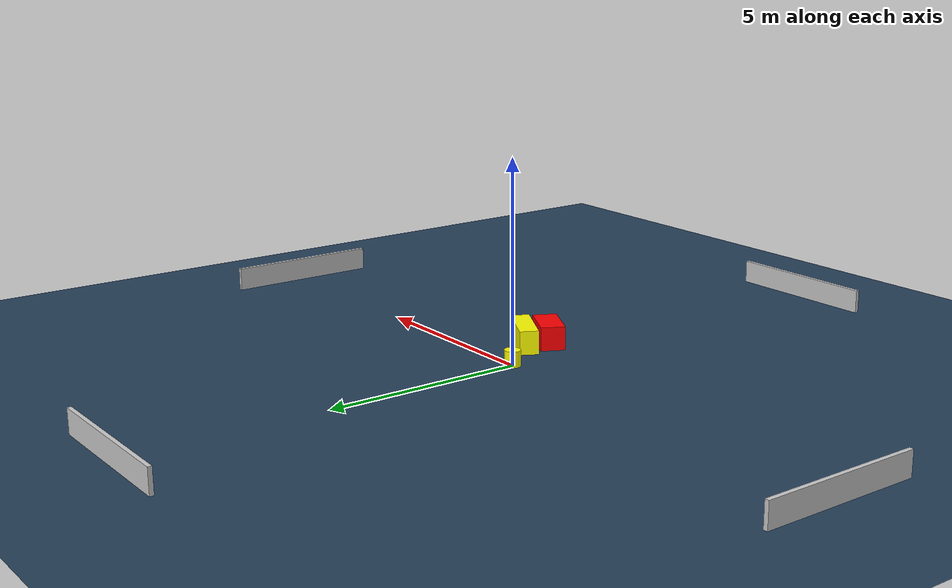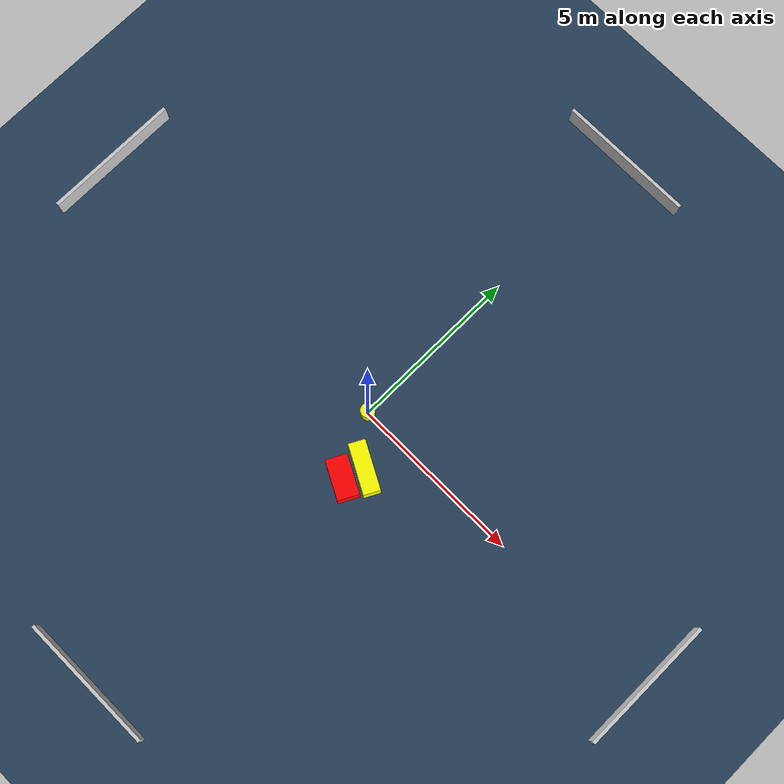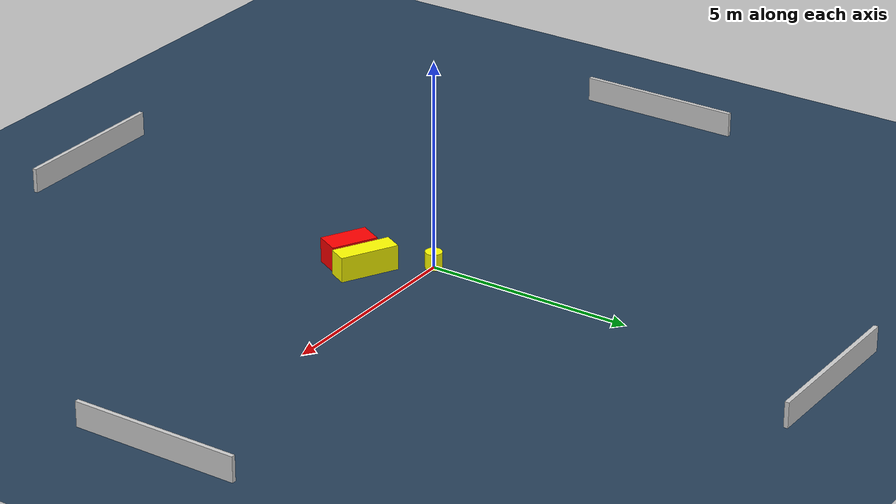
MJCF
<?xml version="1.0" ?>
<mujoco model="generated_environment">
  <option timestep="0.01" integrator="RK4" cone="elliptic"/>
  <default>
    <geom density="1"/>
  </default>
  <asset>
    <texture builtin="gradient" height="3072" name="skybox" rgb1="0.3 0.5 0.7" rgb2="0 0 0" type="skybox" width="512"/>
    <texture builtin="checker" height="300" name="groundplane" rgb1="0.2 0.3 0.4" rgb2="0.1 0.2 0.3" type="2d" width="300"/>
    <material name="groundplane" reflectance="0.2" texrepeat="5 5" texture="groundplane"/>
  </asset>
  <worldbody>
    <light dir="0 0 -1" directional="true" pos="0 0 1.5"/>
    <geom condim="3" friction="0.5 0.005 0.001" material="groundplane" name="floor" pos="0 0 0" size="0 0 0.05" type="plane"/>
    <body name="walls">
      <geom name="wall_1" condim="4" pos="-10.0 0.0 0.3" rgba="0.800000011920929 0.800000011920929 0.800000011920929 1.0" size="0.05 2.0 0.3" type="box"/>
      <geom name="wall_2" condim="4" pos="10.0 0.0 0.3" rgba="0.800000011920929 0.800000011920929 0.800000011920929 1.0" size="0.05 2.0 0.3" type="box"/>
      <geom name="wall_3" condim="4" pos="0.0 -10.0 0.3" rgba="0.800000011920929 0.800000011920929 0.800000011920929 1.0" size="2.0 0.05 0.3" type="box"/>
      <geom name="wall_4" condim="4" pos="0.0 10.0 0.3" rgba="0.800000011920929 0.800000011920929 0.800000011920929 1.0" size="2.0 0.05 0.3" type="box"/>
    </body>
    <body name="robot">
      <joint name="joint_x" type="slide" pos="0 0 0" axis="1 0 0"/>
      <joint name="joint_y" type="slide" pos="0 0 0" axis="0 1 0"/>
      <geom name="robot" type="cylinder" pos="0.0 0.0 0.2" size="0.2 0.2 0.0" mass="5.0" friction="1.0 0.005 0.0001" condim="4" rgba="1.0 1.0 0.0 1.0"/>
    </body>
    <body name="obstacle_1_movable">
      <geom name="obstacle_1_movable" condim="4" pos="1.034103644935409 -1.1530923823662795 0.3" euler="0 0 61.913660066928685" friction="0.0 0.005 0.001" rgba="1.0 1.0 0.0 1.0" size="0.2385271744313715 0.7059790079341635 0.3" type="box" mass="0.1"/>
      <joint type="free"/>
    </body>
    <body name="obstacle_2_static">
      <geom name="obstacle_2_static" condim="4" pos="0.8197806185502938 -1.748089739499042 0.3" euler="0 0 242.43031648393932" friction="0.0 0.005 0.001" rgba="1.0 0.0 0.0 1.0" size="0.30512777622861914 0.560778822694451 0.3" type="box"/>
    </body>
  </worldbody>
  <actuator>
    <motor name="actuator_x" joint="joint_x" gear="1" ctrlrange="-1 1"/>
    <motor name="actuator_y" joint="joint_y" gear="1" ctrlrange="-1 1"/>
  </actuator>
</mujoco>
